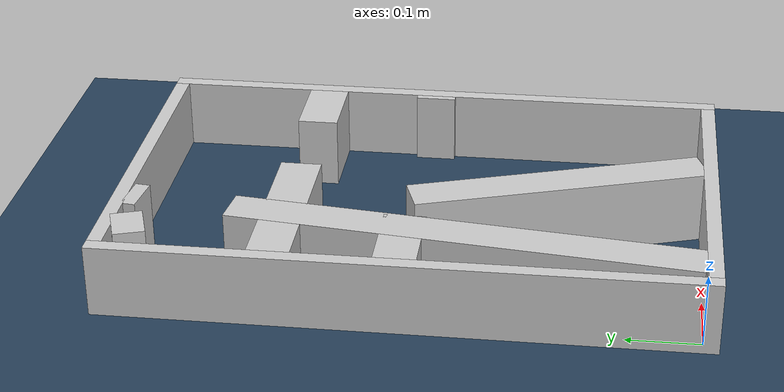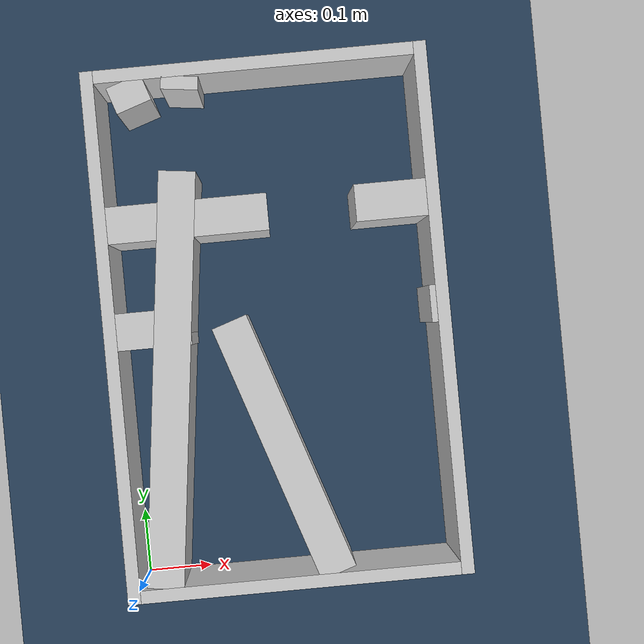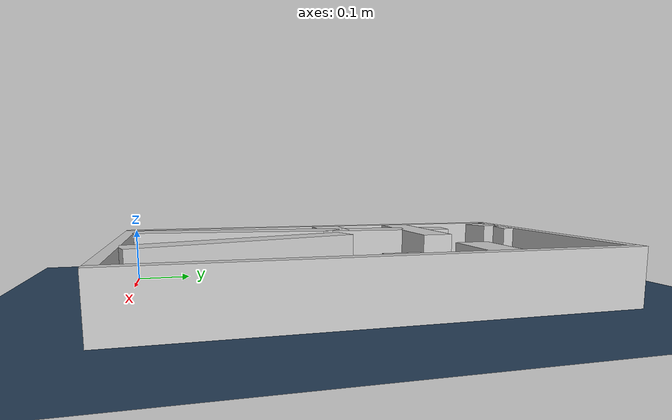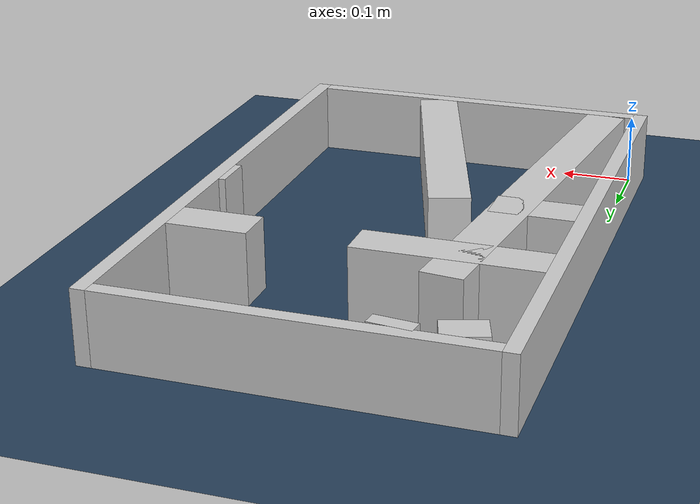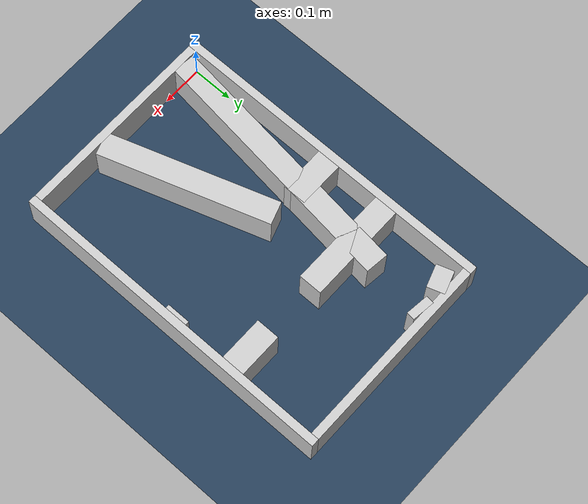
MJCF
<?xml version="1.0" ?>
<mujoco model="generated_real_template">
  <compiler angle="degree"/>
  <option timestep="0.002" integrator="implicitfast" iterations="100" cone="elliptic"/>
  <default>
    <geom density="1"/>
  </default>
  <asset>
    <texture builtin="gradient" height="3072" rgb1="0.3 0.5 0.7" rgb2="0 0 0" type="skybox" width="512"/>
    <texture builtin="checker" height="300" mark="edge" markrgb="0.8 0.8 0.8" name="groundplane" rgb1="0.2 0.3 0.4" rgb2="0.1 0.2 0.3" type="2d" width="300"/>
    <material name="groundplane" reflectance="0.2" texrepeat="5 5" texture="groundplane" texuniform="true"/>
  </asset>
  <worldbody>
    <light dir="0 0 -1" directional="true" pos="0 0 1.5"/>
    <geom name="floor" type="plane" condim="4" friction="0.5 0.005 0.001" material="groundplane" size="0 0 0.05"/>
    <body name="walls">
      <geom name="wall_boundary_left" type="box" condim="4" friction="1.0 0.005 0.0001" rgba="0.8 0.8 0.8 1" pos="-0.010000 0.387500 0.050000" euler="0 0 0.000000" size="0.010000 0.407500 0.050000"/>
      <geom name="wall_boundary_right" type="box" condim="4" friction="1.0 0.005 0.0001" rgba="0.8 0.8 0.8 1" pos="0.500000 0.387500 0.050000" euler="0 0 0.000000" size="0.010000 0.407500 0.050000"/>
      <geom name="wall_boundary_bottom" type="box" condim="4" friction="1.0 0.005 0.0001" rgba="0.8 0.8 0.8 1" pos="0.245000 -0.010000 0.050000" euler="0 0 0.000000" size="0.245000 0.010000 0.050000"/>
      <geom name="wall_boundary_top" type="box" condim="4" friction="1.0 0.005 0.0001" rgba="0.8 0.8 0.8 1" pos="0.245000 0.785000 0.050000" euler="0 0 0.000000" size="0.245000 0.010000 0.050000"/>
      <geom name="wall_inner_1_1" type="box" condim="4" friction="1.0 0.005 0.0001" rgba="0.8 0.8 0.8 1" pos="0.238223 0.197627 0.050000" euler="0 0 108.465649" size="0.208354 0.028500 0.050000"/>
      <geom name="wall_inner_1_2" type="box" condim="4" friction="1.0 0.005 0.0001" rgba="0.8 0.8 0.8 1" pos="0.052176 0.754771 0.050000" euler="0 0 108.465649" size="0.021327 0.028500 0.050000"/>
      <geom name="wall_inner_2_1" type="box" condim="4" friction="1.0 0.005 0.0001" rgba="0.8 0.8 0.8 1" pos="0.076865 0.315839 0.050000" euler="0 0 83.180846" size="0.318089 0.028500 0.050000"/>
      <geom name="wall_inner_2_2" type="box" condim="4" friction="1.0 0.005 0.0001" rgba="0.8 0.8 0.8 1" pos="0.130561 0.764870 0.050000" euler="0 0 83.180846" size="0.010202 0.028500 0.050000"/>
      <geom name="wall_inner_3_1" type="box" condim="4" friction="1.0 0.005 0.0001" rgba="0.8 0.8 0.8 1" pos="0.056917 0.394756 0.050000" euler="0 0 0.000000" size="0.056917 0.028500 0.050000"/>
      <geom name="wall_inner_3_2" type="box" condim="4" friction="1.0 0.005 0.0001" rgba="0.8 0.8 0.8 1" pos="0.485183 0.394756 0.050000" euler="0 0 0.000000" size="0.004817 0.028500 0.050000"/>
      <geom name="wall_inner_4_1" type="box" condim="4" friction="1.0 0.005 0.0001" rgba="0.8 0.8 0.8 1" pos="0.123421 0.557742 0.050000" euler="0 0 0.000000" size="0.123421 0.028500 0.050000"/>
      <geom name="wall_inner_4_2" type="box" condim="4" friction="1.0 0.005 0.0001" rgba="0.8 0.8 0.8 1" pos="0.435128 0.557742 0.050000" euler="0 0 0.000000" size="0.054872 0.028500 0.050000"/>
    </body>
  </worldbody>
</mujoco>
